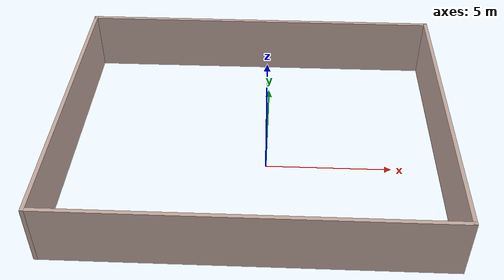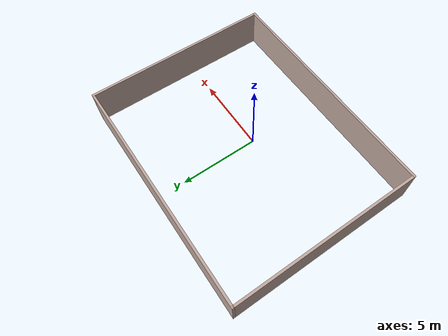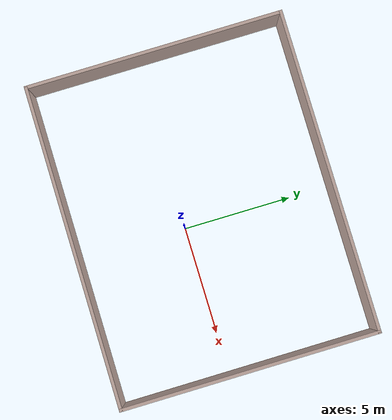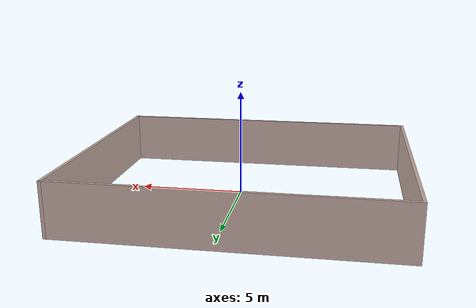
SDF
<?xml version='1.0'?>
<sdf version='1.7'>
  <model name='gardener_house_2'>
    <pose>-0.514 0.942 0 0 -0 0</pose>
    <link name='Wall_10'>
      <collision name='Wall_10_Collision'>
        <geometry>
          <box>
            <size>15 0.15 2.5</size>
          </box>
        </geometry>
        <pose>0 0 1.25 0 -0 0</pose>
      </collision>
      <visual name='Wall_10_Visual'>
        <pose>0 0 1.25 0 -0 0</pose>
        <geometry>
          <box>
            <size>15 0.15 2.5</size>
          </box>
        </geometry>
        <material>
          <script>
            <uri>file://media/materials/scripts/gazebo.material</uri>
            <name>Gazebo/Grey</name>
          </script>
          <ambient>0.760784 0.662745 0.627451 1</ambient>
        </material>
        <meta>
          <layer>0</layer>
        </meta>
      </visual>
      <pose>0 -5.925 0 0 -0 3.14159</pose>
    </link>
    <link name='Wall_12'>
      <collision name='Wall_12_Collision'>
        <geometry>
          <box>
            <size>12 0.15 2.5</size>
          </box>
        </geometry>
        <pose>0 0 1.25 0 -0 0</pose>
      </collision>
      <visual name='Wall_12_Visual'>
        <pose>0 0 1.25 0 -0 0</pose>
        <geometry>
          <box>
            <size>12 0.15 2.5</size>
          </box>
        </geometry>
        <material>
          <script>
            <uri>file://media/materials/scripts/gazebo.material</uri>
            <name>Gazebo/Grey</name>
          </script>
          <ambient>0.760784 0.662745 0.627451 1</ambient>
        </material>
        <meta>
          <layer>0</layer>
        </meta>
      </visual>
      <pose>-7.425 0 0 0 -0 -1.5708</pose>
    </link>
    <link name='Wall_6'>
      <collision name='Wall_6_Collision'>
        <geometry>
          <box>
            <size>15 0.15 2.5</size>
          </box>
        </geometry>
        <pose>0 0 1.25 0 -0 0</pose>
      </collision>
      <visual name='Wall_6_Visual'>
        <pose>0 0 1.25 0 -0 0</pose>
        <geometry>
          <box>
            <size>15 0.15 2.5</size>
          </box>
        </geometry>
        <material>
          <script>
            <uri>file://media/materials/scripts/gazebo.material</uri>
            <name>Gazebo/Grey</name>
          </script>
          <ambient>0.760784 0.662745 0.627451 1</ambient>
        </material>
        <meta>
          <layer>0</layer>
        </meta>
      </visual>
      <pose>0 5.925 0 0 -0 3.14159</pose>
    </link>
    <link name='Wall_8'>
      <collision name='Wall_8_Collision'>
        <geometry>
          <box>
            <size>12 0.15 2.5</size>
          </box>
        </geometry>
        <pose>0 0 1.25 0 -0 0</pose>
      </collision>
      <visual name='Wall_8_Visual'>
        <pose>0 0 1.25 0 -0 0</pose>
        <geometry>
          <box>
            <size>12 0.15 2.5</size>
          </box>
        </geometry>
        <material>
          <script>
            <uri>file://media/materials/scripts/gazebo.material</uri>
            <name>Gazebo/Grey</name>
          </script>
          <ambient>0.760784 0.662745 0.627451 1</ambient>
        </material>
        <meta>
          <layer>0</layer>
        </meta>
      </visual>
      <pose>7.425 0 0 0 -0 -1.5708</pose>
    </link>
    <static>1</static>
  </model>
</sdf>
